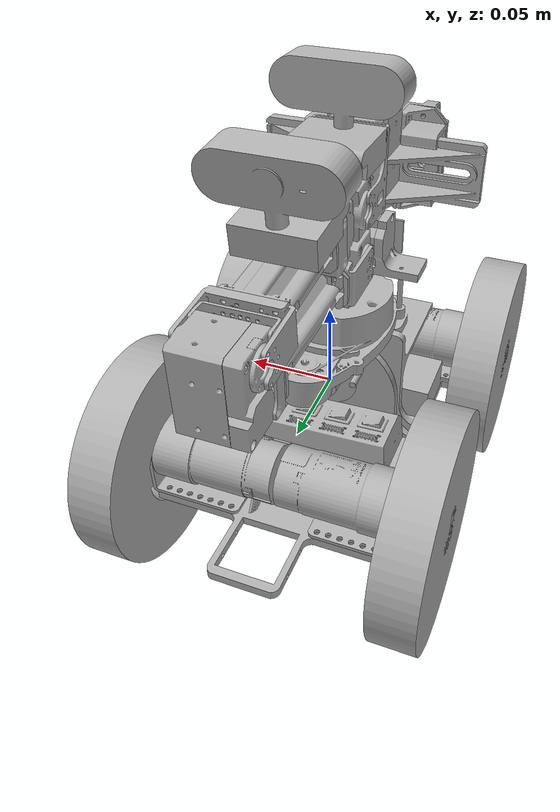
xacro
<?xml version="1.0" ?>
<robot name="k1d" xmlns:xacro="http://www.ros.org/wiki/xacro">

<xacro:include filename="$(find k1d_description)/urdf/materials.xacro" />
<xacro:include filename="$(find k1d_description)/urdf/k1d.trans" />
<xacro:include filename="$(find k1d_description)/urdf/k1d.gazebo" />
<link name="base_link">
  <inertial>
    <origin xyz="-0.000633320061717951 -0.041414084124841974 -0.011332276162165584" rpy="0 0 0"/>
    <mass value="0.8679378922144382"/>
    <inertia ixx="0.00128" iyy="0.001289" izz="0.001492" ixy="-0.0" iyz="-0.000284" ixz="-0.0"/>
  </inertial>
  <visual>
    <origin xyz="0 0 0" rpy="0 0 0"/>
    <geometry>
      <mesh filename="package://k1d_description/meshes/base_link.stl" scale="0.001 0.001 0.001"/>
    </geometry>
    <material name="silver"/>
  </visual>
  <collision>
    <origin xyz="0 0 0" rpy="0 0 0"/>
    <geometry>
      <mesh filename="package://k1d_description/meshes/base_link.stl" scale="0.001 0.001 0.001"/>
    </geometry>
  </collision>
</link>

<link name="base_scan_1">
  <inertial>
    <origin xyz="-0.031013242986738847 0.03010215849057539 0.006905221273833313" rpy="0 0 0"/>
    <mass value="0.05487799022217015"/>
    <inertia ixx="3.6e-05" iyy="1.8e-05" izz="4.5e-05" ixy="-0.0" iyz="5e-06" ixz="0.0"/>
  </inertial>
  <visual>
    <origin xyz="-0.030184 0.029366 -0.034911" rpy="0 0 0"/>
    <geometry>
      <mesh filename="package://k1d_description/meshes/base_scan_1.stl" scale="0.001 0.001 0.001"/>
    </geometry>
    <material name="silver"/>
  </visual>
  <collision>
    <origin xyz="-0.030184 0.029366 -0.034911" rpy="0 0 0"/>
    <geometry>
      <mesh filename="package://k1d_description/meshes/base_scan_1.stl" scale="0.001 0.001 0.001"/>
    </geometry>
  </collision>
</link>

<link name="bearing_1">
  <inertial>
    <origin xyz="-4.700706713833781e-07 0.005000307196905395 -4.6923354529115034e-07" rpy="0 0 0"/>
    <mass value="0.05425530512749553"/>
    <inertia ixx="4e-06" iyy="8e-06" izz="4e-06" ixy="-0.0" iyz="0.0" ixz="0.0"/>
  </inertial>
  <visual>
    <origin xyz="0.000625 0.009697 8.9e-05" rpy="0 0 0"/>
    <geometry>
      <mesh filename="package://k1d_description/meshes/bearing_1.stl" scale="0.001 0.001 0.001"/>
    </geometry>
    <material name="silver"/>
  </visual>
  <collision>
    <origin xyz="0.000625 0.009697 8.9e-05" rpy="0 0 0"/>
    <geometry>
      <mesh filename="package://k1d_description/meshes/bearing_1.stl" scale="0.001 0.001 0.001"/>
    </geometry>
  </collision>
</link>

<link name="limiter_1">
  <inertial>
    <origin xyz="0.00021788879744154987 0.0009369691662430065 0.008633565621573192" rpy="0 0 0"/>
    <mass value="0.006375075725917784"/>
    <inertia ixx="1e-06" iyy="1e-06" izz="0.0" ixy="-0.0" iyz="-0.0" ixz="-0.0"/>
  </inertial>
  <visual>
    <origin xyz="0.000625 -0.004303 8.9e-05" rpy="0 0 0"/>
    <geometry>
      <mesh filename="package://k1d_description/meshes/limiter_1.stl" scale="0.001 0.001 0.001"/>
    </geometry>
    <material name="silver"/>
  </visual>
  <collision>
    <origin xyz="0.000625 -0.004303 8.9e-05" rpy="0 0 0"/>
    <geometry>
      <mesh filename="package://k1d_description/meshes/limiter_1.stl" scale="0.001 0.001 0.001"/>
    </geometry>
  </collision>
</link>

<link name="chassisback_1">
  <inertial>
    <origin xyz="-1.2436701145940895e-05 0.03463766858738379 -0.0253679156939081" rpy="0 0 0"/>
    <mass value="0.6099593335094626"/>
    <inertia ixx="0.000856" iyy="0.000808" izz="0.001331" ixy="0.0" iyz="0.000176" ixz="-0.0"/>
  </inertial>
  <visual>
    <origin xyz="0.000625 -0.000303 8.9e-05" rpy="0 0 0"/>
    <geometry>
      <mesh filename="package://k1d_description/meshes/chassisback_1.stl" scale="0.001 0.001 0.001"/>
    </geometry>
    <material name="silver"/>
  </visual>
  <collision>
    <origin xyz="0.000625 -0.000303 8.9e-05" rpy="0 0 0"/>
    <geometry>
      <mesh filename="package://k1d_description/meshes/chassisback_1.stl" scale="0.001 0.001 0.001"/>
    </geometry>
  </collision>
</link>

<link name="bracket_1">
  <inertial>
    <origin xyz="-0.02889063899231881 -0.01561538393544995 0.006770707043989903" rpy="0 0 0"/>
    <mass value="0.04195982764049016"/>
    <inertia ixx="9e-06" iyy="1.6e-05" izz="1.7e-05" ixy="0.0" iyz="-0.0" ixz="4e-06"/>
  </inertial>
  <visual>
    <origin xyz="0.025571 -0.086772 0.030758" rpy="0 0 0"/>
    <geometry>
      <mesh filename="package://k1d_description/meshes/bracket_1.stl" scale="0.001 0.001 0.001"/>
    </geometry>
    <material name="silver"/>
  </visual>
  <collision>
    <origin xyz="0.025571 -0.086772 0.030758" rpy="0 0 0"/>
    <geometry>
      <mesh filename="package://k1d_description/meshes/bracket_1.stl" scale="0.001 0.001 0.001"/>
    </geometry>
  </collision>
</link>

<link name="bracket_4">
  <inertial>
    <origin xyz="0.028890977169466116 0.015615750207864133 0.006770707043183961" rpy="0 0 0"/>
    <mass value="0.04195982764049016"/>
    <inertia ixx="9e-06" iyy="1.6e-05" izz="1.7e-05" ixy="0.0" iyz="0.0" ixz="-4e-06"/>
  </inertial>
  <visual>
    <origin xyz="-0.024254 -0.05553 0.030758" rpy="0 0 0"/>
    <geometry>
      <mesh filename="package://k1d_description/meshes/bracket_4.stl" scale="0.001 0.001 0.001"/>
    </geometry>
    <material name="silver"/>
  </visual>
  <collision>
    <origin xyz="-0.024254 -0.05553 0.030758" rpy="0 0 0"/>
    <geometry>
      <mesh filename="package://k1d_description/meshes/bracket_4.stl" scale="0.001 0.001 0.001"/>
    </geometry>
  </collision>
</link>

<link name="bracket_3">
  <inertial>
    <origin xyz="-0.02889063896005917 0.015626470195984704 0.006770707043985354" rpy="0 0 0"/>
    <mass value="0.04195982764049016"/>
    <inertia ixx="9e-06" iyy="1.6e-05" izz="1.7e-05" ixy="0.0" iyz="-0.0" ixz="4e-06"/>
  </inertial>
  <visual>
    <origin xyz="0.025571 0.094869 0.030758" rpy="0 0 0"/>
    <geometry>
      <mesh filename="package://k1d_description/meshes/bracket_3.stl" scale="0.001 0.001 0.001"/>
    </geometry>
    <material name="silver"/>
  </visual>
  <collision>
    <origin xyz="0.025571 0.094869 0.030758" rpy="0 0 0"/>
    <geometry>
      <mesh filename="package://k1d_description/meshes/bracket_3.stl" scale="0.001 0.001 0.001"/>
    </geometry>
  </collision>
</link>

<link name="bracket_2">
  <inertial>
    <origin xyz="0.02889097720172588 0.015615604339298622 0.006770707043178906" rpy="0 0 0"/>
    <mass value="0.04195982764049016"/>
    <inertia ixx="9e-06" iyy="1.6e-05" izz="1.7e-05" ixy="0.0" iyz="0.0" ixz="-4e-06"/>
  </inertial>
  <visual>
    <origin xyz="-0.024254 0.094869 0.030758" rpy="0 0 0"/>
    <geometry>
      <mesh filename="package://k1d_description/meshes/bracket_2.stl" scale="0.001 0.001 0.001"/>
    </geometry>
    <material name="silver"/>
  </visual>
  <collision>
    <origin xyz="-0.024254 0.094869 0.030758" rpy="0 0 0"/>
    <geometry>
      <mesh filename="package://k1d_description/meshes/bracket_2.stl" scale="0.001 0.001 0.001"/>
    </geometry>
  </collision>
</link>

<link name="dcmotor_1">
  <inertial>
    <origin xyz="0.028507599418057812 -2.7385761959139443e-05 0.0068004551265215905" rpy="0 0 0"/>
    <mass value="0.45909174206904396"/>
    <inertia ixx="7.2e-05" iyy="0.00019" izz="0.00019" ixy="0.0" iyz="-0.0" ixz="-2e-06"/>
  </inertial>
  <visual>
    <origin xyz="0.070009 -0.071151 0.016958" rpy="0 0 0"/>
    <geometry>
      <mesh filename="package://k1d_description/meshes/dcmotor_1.stl" scale="0.001 0.001 0.001"/>
    </geometry>
    <material name="silver"/>
  </visual>
  <collision>
    <origin xyz="0.070009 -0.071151 0.016958" rpy="0 0 0"/>
    <geometry>
      <mesh filename="package://k1d_description/meshes/dcmotor_1.stl" scale="0.001 0.001 0.001"/>
    </geometry>
  </collision>
</link>

<link name="dcmotor_2">
  <inertial>
    <origin xyz="-0.02850726120844349 2.7606165807755878e-05 0.006800455125904808" rpy="0 0 0"/>
    <mass value="0.45909174206904396"/>
    <inertia ixx="7.2e-05" iyy="0.00019" izz="0.00019" ixy="0.0" iyz="0.0" ixz="2e-06"/>
  </inertial>
  <visual>
    <origin xyz="-0.068692 0.079248 0.016958" rpy="0 0 0"/>
    <geometry>
      <mesh filename="package://k1d_description/meshes/dcmotor_2.stl" scale="0.001 0.001 0.001"/>
    </geometry>
    <material name="silver"/>
  </visual>
  <collision>
    <origin xyz="-0.068692 0.079248 0.016958" rpy="0 0 0"/>
    <geometry>
      <mesh filename="package://k1d_description/meshes/dcmotor_2.stl" scale="0.001 0.001 0.001"/>
    </geometry>
  </collision>
</link>

<link name="dcmotor_3">
  <inertial>
    <origin xyz="0.028507599450317465 -2.753163052453267e-05 0.006800455126517084" rpy="0 0 0"/>
    <mass value="0.45909174206904396"/>
    <inertia ixx="7.2e-05" iyy="0.00019" izz="0.00019" ixy="0.0" iyz="-0.0" ixz="-2e-06"/>
  </inertial>
  <visual>
    <origin xyz="0.070009 0.079248 0.016958" rpy="0 0 0"/>
    <geometry>
      <mesh filename="package://k1d_description/meshes/dcmotor_3.stl" scale="0.001 0.001 0.001"/>
    </geometry>
    <material name="silver"/>
  </visual>
  <collision>
    <origin xyz="0.070009 0.079248 0.016958" rpy="0 0 0"/>
    <geometry>
      <mesh filename="package://k1d_description/meshes/dcmotor_3.stl" scale="0.001 0.001 0.001"/>
    </geometry>
  </collision>
</link>

<link name="dcmotor_4">
  <inertial>
    <origin xyz="-0.028507261240703193 2.7752034373065837e-05 0.006800455125909762" rpy="0 0 0"/>
    <mass value="0.45909174206904396"/>
    <inertia ixx="7.2e-05" iyy="0.00019" izz="0.00019" ixy="0.0" iyz="0.0" ixz="2e-06"/>
  </inertial>
  <visual>
    <origin xyz="-0.068692 -0.071151 0.016958" rpy="0 0 0"/>
    <geometry>
      <mesh filename="package://k1d_description/meshes/dcmotor_4.stl" scale="0.001 0.001 0.001"/>
    </geometry>
    <material name="silver"/>
  </visual>
  <collision>
    <origin xyz="-0.068692 -0.071151 0.016958" rpy="0 0 0"/>
    <geometry>
      <mesh filename="package://k1d_description/meshes/dcmotor_4.stl" scale="0.001 0.001 0.001"/>
    </geometry>
  </collision>
</link>

<link name="hub_1">
  <inertial>
    <origin xyz="0.0031138310480299386 -0.0001543860489675447 9.100569364329028e-05" rpy="0 0 0"/>
    <mass value="0.02001967132782171"/>
    <inertia ixx="2e-06" iyy="1e-06" izz="1e-06" ixy="0.0" iyz="-0.0" ixz="-0.0"/>
  </inertial>
  <visual>
    <origin xyz="0.092009 -0.071151 0.016958" rpy="0 0 0"/>
    <geometry>
      <mesh filename="package://k1d_description/meshes/hub_1.stl" scale="0.001 0.001 0.001"/>
    </geometry>
    <material name="silver"/>
  </visual>
  <collision>
    <origin xyz="0.092009 -0.071151 0.016958" rpy="0 0 0"/>
    <geometry>
      <mesh filename="package://k1d_description/meshes/hub_1.stl" scale="0.001 0.001 0.001"/>
    </geometry>
  </collision>
</link>

<link name="hub_2">
  <inertial>
    <origin xyz="-0.003113492838516446 0.00015460645281629992 9.100569231643499e-05" rpy="0 0 0"/>
    <mass value="0.02001967132782171"/>
    <inertia ixx="2e-06" iyy="1e-06" izz="1e-06" ixy="0.0" iyz="0.0" ixz="0.0"/>
  </inertial>
  <visual>
    <origin xyz="-0.090692 0.079248 0.016958" rpy="0 0 0"/>
    <geometry>
      <mesh filename="package://k1d_description/meshes/hub_2.stl" scale="0.001 0.001 0.001"/>
    </geometry>
    <material name="silver"/>
  </visual>
  <collision>
    <origin xyz="-0.090692 0.079248 0.016958" rpy="0 0 0"/>
    <geometry>
      <mesh filename="package://k1d_description/meshes/hub_2.stl" scale="0.001 0.001 0.001"/>
    </geometry>
  </collision>
</link>

<link name="hub_3">
  <inertial>
    <origin xyz="0.0031138310802898694 -0.0001545319175329657 9.100569363862387e-05" rpy="0 0 0"/>
    <mass value="0.02001967132782171"/>
    <inertia ixx="2e-06" iyy="1e-06" izz="1e-06" ixy="0.0" iyz="-0.0" ixz="-0.0"/>
  </inertial>
  <visual>
    <origin xyz="0.092009 0.079248 0.016958" rpy="0 0 0"/>
    <geometry>
      <mesh filename="package://k1d_description/meshes/hub_3.stl" scale="0.001 0.001 0.001"/>
    </geometry>
    <material name="silver"/>
  </visual>
  <collision>
    <origin xyz="0.092009 0.079248 0.016958" rpy="0 0 0"/>
    <geometry>
      <mesh filename="package://k1d_description/meshes/hub_3.stl" scale="0.001 0.001 0.001"/>
    </geometry>
  </collision>
</link>

<link name="hub_4">
  <inertial>
    <origin xyz="-0.0031134928707760023 0.00015475232138174866 9.100569232154895e-05" rpy="0 0 0"/>
    <mass value="0.02001967132782171"/>
    <inertia ixx="2e-06" iyy="1e-06" izz="1e-06" ixy="0.0" iyz="0.0" ixz="0.0"/>
  </inertial>
  <visual>
    <origin xyz="-0.090692 -0.071151 0.016958" rpy="0 0 0"/>
    <geometry>
      <mesh filename="package://k1d_description/meshes/hub_4.stl" scale="0.001 0.001 0.001"/>
    </geometry>
    <material name="silver"/>
  </visual>
  <collision>
    <origin xyz="-0.090692 -0.071151 0.016958" rpy="0 0 0"/>
    <geometry>
      <mesh filename="package://k1d_description/meshes/hub_4.stl" scale="0.001 0.001 0.001"/>
    </geometry>
  </collision>
</link>

<link name="wheel_1">
  <inertial>
    <origin xyz="-0.011849757228356753 1.8315325828188733e-07 2.629076953537812e-07" rpy="0 0 0"/>
    <mass value="2.126491898240408"/>
    <inertia ixx="0.004598" iyy="0.002411" izz="0.002411" ixy="0.0" iyz="-0.0" ixz="-0.0"/>
  </inertial>
  <visual>
    <origin xyz="-0.090692 -0.071151 0.016958" rpy="0 0 0"/>
    <geometry>
      <mesh filename="package://k1d_description/meshes/wheel_1.stl" scale="0.001 0.001 0.001"/>
    </geometry>
    <material name="silver"/>
  </visual>
  <collision>
    <origin xyz="-0.090692 -0.071151 0.016958" rpy="0 0 0"/>
    <geometry>
      <mesh filename="package://k1d_description/meshes/wheel_1.stl" scale="0.001 0.001 0.001"/>
    </geometry>
  </collision>
</link>

<link name="wheel_2">
  <inertial>
    <origin xyz="-0.011849757196097072 3.728469279151714e-08 2.629076902745109e-07" rpy="0 0 0"/>
    <mass value="2.126491898240408"/>
    <inertia ixx="0.004598" iyy="0.002411" izz="0.002411" ixy="0.0" iyz="-0.0" ixz="-0.0"/>
  </inertial>
  <visual>
    <origin xyz="-0.090692 0.079248 0.016958" rpy="0 0 0"/>
    <geometry>
      <mesh filename="package://k1d_description/meshes/wheel_2.stl" scale="0.001 0.001 0.001"/>
    </geometry>
    <material name="silver"/>
  </visual>
  <collision>
    <origin xyz="-0.090692 0.079248 0.016958" rpy="0 0 0"/>
    <geometry>
      <mesh filename="package://k1d_description/meshes/wheel_2.stl" scale="0.001 0.001 0.001"/>
    </geometry>
  </collision>
</link>

<link name="wheel_3">
  <inertial>
    <origin xyz="0.011850095437869135 3.725059061210345e-08 2.629088816027969e-07" rpy="0 0 0"/>
    <mass value="2.126491898240408"/>
    <inertia ixx="0.004598" iyy="0.002411" izz="0.002411" ixy="0.0" iyz="0.0" ixz="0.0"/>
  </inertial>
  <visual>
    <origin xyz="0.092009 0.079248 0.016958" rpy="0 0 0"/>
    <geometry>
      <mesh filename="package://k1d_description/meshes/wheel_3.stl" scale="0.001 0.001 0.001"/>
    </geometry>
    <material name="silver"/>
  </visual>
  <collision>
    <origin xyz="0.092009 0.079248 0.016958" rpy="0 0 0"/>
    <geometry>
      <mesh filename="package://k1d_description/meshes/wheel_3.stl" scale="0.001 0.001 0.001"/>
    </geometry>
  </collision>
</link>

<link name="wheel_4">
  <inertial>
    <origin xyz="0.011850095405609426 1.8311915624125152e-07 2.6290888621716135e-07" rpy="0 0 0"/>
    <mass value="2.126491898240408"/>
    <inertia ixx="0.004598" iyy="0.002411" izz="0.002411" ixy="0.0" iyz="0.0" ixz="0.0"/>
  </inertial>
  <visual>
    <origin xyz="0.092009 -0.071151 0.016958" rpy="0 0 0"/>
    <geometry>
      <mesh filename="package://k1d_description/meshes/wheel_4.stl" scale="0.001 0.001 0.001"/>
    </geometry>
    <material name="silver"/>
  </visual>
  <collision>
    <origin xyz="0.092009 -0.071151 0.016958" rpy="0 0 0"/>
    <geometry>
      <mesh filename="package://k1d_description/meshes/wheel_4.stl" scale="0.001 0.001 0.001"/>
    </geometry>
  </collision>
</link>

<link name="spacer_1">
  <inertial>
    <origin xyz="0.03099956508952051 -3.111700395755368e-07 0.01073353076646108" rpy="0 0 0"/>
    <mass value="0.002382449094157573"/>
    <inertia ixx="0.0" iyy="2e-06" izz="2e-06" ixy="-0.0" iyz="-0.0" ixz="0.0"/>
  </inertial>
  <visual>
    <origin xyz="0.031816 0.029366 -0.041211" rpy="0 0 0"/>
    <geometry>
      <mesh filename="package://k1d_description/meshes/spacer_1.stl" scale="0.001 0.001 0.001"/>
    </geometry>
    <material name="silver"/>
  </visual>
  <collision>
    <origin xyz="0.031816 0.029366 -0.041211" rpy="0 0 0"/>
    <geometry>
      <mesh filename="package://k1d_description/meshes/spacer_1.stl" scale="0.001 0.001 0.001"/>
    </geometry>
  </collision>
</link>

<link name="clawholder_1">
  <inertial>
    <origin xyz="0.031997119905123016 -0.006143865086212039 0.010024736780897991" rpy="0 0 0"/>
    <mass value="0.11911655346514588"/>
    <inertia ixx="1.5e-05" iyy="6.9e-05" izz="6.2e-05" ixy="0.0" iyz="1e-06" ixz="1e-06"/>
  </inertial>
  <visual>
    <origin xyz="0.031816 0.029366 -0.062679" rpy="0 0 0"/>
    <geometry>
      <mesh filename="package://k1d_description/meshes/clawholder_1.stl" scale="0.001 0.001 0.001"/>
    </geometry>
    <material name="silver"/>
  </visual>
  <collision>
    <origin xyz="0.031816 0.029366 -0.062679" rpy="0 0 0"/>
    <geometry>
      <mesh filename="package://k1d_description/meshes/clawholder_1.stl" scale="0.001 0.001 0.001"/>
    </geometry>
  </collision>
</link>

<link name="gassensor_1">
  <inertial>
    <origin xyz="-0.004746631959460942 -0.0008000280042196398 -0.007877393733740051" rpy="0 0 0"/>
    <mass value="0.0034603887447628642"/>
    <inertia ixx="0.0" iyy="0.0" izz="0.0" ixy="0.0" iyz="0.0" ixz="-0.0"/>
  </inertial>
  <visual>
    <origin xyz="0.015808 0.044105 -0.086221" rpy="0 0 0"/>
    <geometry>
      <mesh filename="package://k1d_description/meshes/gassensor_1.stl" scale="0.001 0.001 0.001"/>
    </geometry>
    <material name="silver"/>
  </visual>
  <collision>
    <origin xyz="0.015808 0.044105 -0.086221" rpy="0 0 0"/>
    <geometry>
      <mesh filename="package://k1d_description/meshes/gassensor_1.stl" scale="0.001 0.001 0.001"/>
    </geometry>
  </collision>
</link>

<link name="thermalsensor_1">
  <inertial>
    <origin xyz="0.009947674706848693 -0.0011020386741580346 -0.009714002418419354" rpy="0 0 0"/>
    <mass value="0.004996183093515437"/>
    <inertia ixx="0.0" iyy="0.0" izz="0.0" ixy="-0.0" iyz="0.0" ixz="-0.0"/>
  </inertial>
  <visual>
    <origin xyz="-0.011291 0.044105 -0.089763" rpy="0 0 0"/>
    <geometry>
      <mesh filename="package://k1d_description/meshes/thermalsensor_1.stl" scale="0.001 0.001 0.001"/>
    </geometry>
    <material name="silver"/>
  </visual>
  <collision>
    <origin xyz="-0.011291 0.044105 -0.089763" rpy="0 0 0"/>
    <geometry>
      <mesh filename="package://k1d_description/meshes/thermalsensor_1.stl" scale="0.001 0.001 0.001"/>
    </geometry>
  </collision>
</link>

<link name="battery_1">
  <inertial>
    <origin xyz="-0.05500011915754396 -0.017595185994781874 0.010103203711203074" rpy="0 0 0"/>
    <mass value="0.6140038483319866"/>
    <inertia ixx="8.4e-05" iyy="0.00064" izz="0.000682" ixy="-0.0" iyz="-0.0" ixz="0.0"/>
  </inertial>
  <visual>
    <origin xyz="-0.054375 0.019697 0.030758" rpy="0 0 0"/>
    <geometry>
      <mesh filename="package://k1d_description/meshes/battery_1.stl" scale="0.001 0.001 0.001"/>
    </geometry>
    <material name="silver"/>
  </visual>
  <collision>
    <origin xyz="-0.054375 0.019697 0.030758" rpy="0 0 0"/>
    <geometry>
      <mesh filename="package://k1d_description/meshes/battery_1.stl" scale="0.001 0.001 0.001"/>
    </geometry>
  </collision>
</link>

<link name="usbhub_1">
  <inertial>
    <origin xyz="-0.050083838124938704 0.016946085208227595 0.013118894325403644" rpy="0 0 0"/>
    <mass value="0.555204593683218"/>
    <inertia ixx="8.3e-05" iyy="0.000508" izz="0.000541" ixy="-3e-06" iyz="-1e-06" ixz="1.5e-05"/>
  </inertial>
  <visual>
    <origin xyz="-0.054375 -0.005303 0.030758" rpy="0 0 0"/>
    <geometry>
      <mesh filename="package://k1d_description/meshes/usbhub_1.stl" scale="0.001 0.001 0.001"/>
    </geometry>
    <material name="silver"/>
  </visual>
  <collision>
    <origin xyz="-0.054375 -0.005303 0.030758" rpy="0 0 0"/>
    <geometry>
      <mesh filename="package://k1d_description/meshes/usbhub_1.stl" scale="0.001 0.001 0.001"/>
    </geometry>
  </collision>
</link>

<link name="DC12_W-IDLE_ALT1_1">
  <inertial>
    <origin xyz="-0.016299122954718883 0.020480802014490297 -0.011000469233539034" rpy="0 0 0"/>
    <mass value="0.33646225639068494"/>
    <inertia ixx="8.2e-05" iyy="5.4e-05" izz="9.4e-05" ixy="-0.0" iyz="-0.0" ixz="0.0"/>
  </inertial>
  <visual>
    <origin xyz="-0.016392 0.038255 -0.092529" rpy="0 0 0"/>
    <geometry>
      <mesh filename="package://k1d_description/meshes/DC12_W-IDLE_ALT1_1.stl" scale="0.001 0.001 0.001"/>
    </geometry>
    <material name="silver"/>
  </visual>
  <collision>
    <origin xyz="-0.016392 0.038255 -0.092529" rpy="0 0 0"/>
    <geometry>
      <mesh filename="package://k1d_description/meshes/DC12_W-IDLE_ALT1_1.stl" scale="0.001 0.001 0.001"/>
    </geometry>
  </collision>
</link>

<link name="FR12_H101_1">
  <inertial>
    <origin xyz="-0.021000110478255726 0.020374146907254635 -4.6923355151440305e-07" rpy="0 0 0"/>
    <mass value="0.03437095087164525"/>
    <inertia ixx="4e-06" iyy="1.1e-05" izz="1.2e-05" ixy="0.0" iyz="0.0" ixz="0.0"/>
  </inertial>
  <visual>
    <origin xyz="-0.020292 0.006255 -0.081529" rpy="0 0 0"/>
    <geometry>
      <mesh filename="package://k1d_description/meshes/FR12_H101_1.stl" scale="0.001 0.001 0.001"/>
    </geometry>
    <material name="silver"/>
  </visual>
  <collision>
    <origin xyz="-0.020292 0.006255 -0.081529" rpy="0 0 0"/>
    <geometry>
      <mesh filename="package://k1d_description/meshes/FR12_H101_1.stl" scale="0.001 0.001 0.001"/>
    </geometry>
  </collision>
</link>

<link name="ILA-A01_OPEN_1">
  <inertial>
    <origin xyz="-0.012000110474712982 0.039399195230753525 -0.006003908265283173" rpy="0 0 0"/>
    <mass value="0.13410736520700092"/>
    <inertia ixx="8.6e-05" iyy="1.5e-05" izz="9.2e-05" ixy="-0.0" iyz="0.0" ixz="0.0"/>
  </inertial>
  <visual>
    <origin xyz="-0.011292 -0.022245 -0.087529" rpy="0 0 0"/>
    <geometry>
      <mesh filename="package://k1d_description/meshes/ILA-A01_OPEN_1.stl" scale="0.001 0.001 0.001"/>
    </geometry>
    <material name="silver"/>
  </visual>
  <collision>
    <origin xyz="-0.011292 -0.022245 -0.087529" rpy="0 0 0"/>
    <geometry>
      <mesh filename="package://k1d_description/meshes/ILA-A01_OPEN_1.stl" scale="0.001 0.001 0.001"/>
    </geometry>
  </collision>
</link>

<link name="FR12_S101_1">
  <inertial>
    <origin xyz="-0.012000110478030184 0.002327711166216606 0.005999530766310754" rpy="0 0 0"/>
    <mass value="0.024686418261500025"/>
    <inertia ixx="5e-06" iyy="9e-06" izz="5e-06" ixy="-0.0" iyz="0.0" ixz="-0.0"/>
  </inertial>
  <visual>
    <origin xyz="-0.011292 -0.102245 -0.087529" rpy="0 0 0"/>
    <geometry>
      <mesh filename="package://k1d_description/meshes/FR12_S101_1.stl" scale="0.001 0.001 0.001"/>
    </geometry>
    <material name="silver"/>
  </visual>
  <collision>
    <origin xyz="-0.011292 -0.102245 -0.087529" rpy="0 0 0"/>
    <geometry>
      <mesh filename="package://k1d_description/meshes/FR12_S101_1.stl" scale="0.001 0.001 0.001"/>
    </geometry>
  </collision>
</link>

<link name="FR12_H101_2">
  <inertial>
    <origin xyz="-0.021000110482432277 -0.0203238284716646 0.0014207353834639752" rpy="0 0 0"/>
    <mass value="0.03437095087164525"/>
    <inertia ixx="4e-06" iyy="1.1e-05" izz="1.2e-05" ixy="0.0" iyz="0.0" ixz="0.0"/>
  </inertial>
  <visual>
    <origin xyz="-0.020192 -0.121745 -0.105529" rpy="0 0 0"/>
    <geometry>
      <mesh filename="package://k1d_description/meshes/FR12_H101_2.stl" scale="0.001 0.001 0.001"/>
    </geometry>
    <material name="silver"/>
  </visual>
  <collision>
    <origin xyz="-0.020192 -0.121745 -0.105529" rpy="0 0 0"/>
    <geometry>
      <mesh filename="package://k1d_description/meshes/FR12_H101_2.stl" scale="0.001 0.001 0.001"/>
    </geometry>
  </collision>
</link>

<link name="ILA-A02_OPEN_1">
  <inertial>
    <origin xyz="-0.012000110478114587 -0.027307262569741378 -0.004101798037027038" rpy="0 0 0"/>
    <mass value="0.09495273808046654"/>
    <inertia ixx="3.2e-05" iyy="1.1e-05" izz="3.6e-05" ixy="0.0" iyz="2e-06" ixz="-0.0"/>
  </inertial>
  <visual>
    <origin xyz="-0.011192 -0.093733 -0.113502" rpy="0 0 0"/>
    <geometry>
      <mesh filename="package://k1d_description/meshes/ILA-A02_OPEN_1.stl" scale="0.001 0.001 0.001"/>
    </geometry>
    <material name="silver"/>
  </visual>
  <collision>
    <origin xyz="-0.011192 -0.093733 -0.113502" rpy="0 0 0"/>
    <geometry>
      <mesh filename="package://k1d_description/meshes/ILA-A02_OPEN_1.stl" scale="0.001 0.001 0.001"/>
    </geometry>
  </collision>
</link>

<link name="FR12_S102_2">
  <inertial>
    <origin xyz="-0.012000110496538735 -0.0031995611667791288 -0.005791315715793652" rpy="0 0 0"/>
    <mass value="0.01630992935911327"/>
    <inertia ixx="1e-06" iyy="4e-06" izz="3e-06" ixy="0.0" iyz="-0.0" ixz="-0.0"/>
  </inertial>
  <visual>
    <origin xyz="-0.011192 -0.038867 -0.117339" rpy="0 0 0"/>
    <geometry>
      <mesh filename="package://k1d_description/meshes/FR12_S102_2.stl" scale="0.001 0.001 0.001"/>
    </geometry>
    <material name="silver"/>
  </visual>
  <collision>
    <origin xyz="-0.011192 -0.038867 -0.117339" rpy="0 0 0"/>
    <geometry>
      <mesh filename="package://k1d_description/meshes/FR12_S102_2.stl" scale="0.001 0.001 0.001"/>
    </geometry>
  </collision>
</link>

<link name="DC12_W-IDLE_ALT1_3">
  <inertial>
    <origin xyz="-0.0162991229786601 -0.019663116396526195 0.012401770852094388" rpy="0 0 0"/>
    <mass value="0.33646225639068494"/>
    <inertia ixx="8.2e-05" iyy="5.4e-05" izz="9.4e-05" ixy="0.0" iyz="3e-06" ixz="-0.0"/>
  </inertial>
  <visual>
    <origin xyz="-0.016192 -0.029202 -0.100973" rpy="0 0 0"/>
    <geometry>
      <mesh filename="package://k1d_description/meshes/DC12_W-IDLE_ALT1_3.stl" scale="0.001 0.001 0.001"/>
    </geometry>
    <material name="silver"/>
  </visual>
  <collision>
    <origin xyz="-0.016192 -0.029202 -0.100973" rpy="0 0 0"/>
    <geometry>
      <mesh filename="package://k1d_description/meshes/DC12_W-IDLE_ALT1_3.stl" scale="0.001 0.001 0.001"/>
    </geometry>
  </collision>
</link>

<link name="FR12_H104_1">
  <inertial>
    <origin xyz="-0.02050011059852679 -0.022576590762154753 0.00821656608975628" rpy="0 0 0"/>
    <mass value="0.033869717896312025"/>
    <inertia ixx="8e-06" iyy="1.4e-05" izz="1.1e-05" ixy="-0.0" iyz="1e-06" ixz="0.0"/>
  </inertial>
  <visual>
    <origin xyz="-0.019892 0.001953 -0.114178" rpy="0 0 0"/>
    <geometry>
      <mesh filename="package://k1d_description/meshes/FR12_H104_1.stl" scale="0.001 0.001 0.001"/>
    </geometry>
    <material name="silver"/>
  </visual>
  <collision>
    <origin xyz="-0.019892 0.001953 -0.114178" rpy="0 0 0"/>
    <geometry>
      <mesh filename="package://k1d_description/meshes/FR12_H104_1.stl" scale="0.001 0.001 0.001"/>
    </geometry>
  </collision>
</link>

<link name="camera__1__1">
  <inertial>
    <origin xyz="8.864610952068479e-06 0.019607953749089864 0.024310133593720626" rpy="0 0 0"/>
    <mass value="0.4370558986671765"/>
    <inertia ixx="0.000146" iyy="0.000217" izz="0.000148" ixy="-0.0" iyz="-2.8e-05" ixz="-0.0"/>
  </inertial>
  <visual>
    <origin xyz="0.000808 -0.039181 -0.121828" rpy="0 0 0"/>
    <geometry>
      <mesh filename="package://k1d_description/meshes/camera__1__1.stl" scale="0.001 0.001 0.001"/>
    </geometry>
    <material name="silver"/>
  </visual>
  <collision>
    <origin xyz="0.000808 -0.039181 -0.121828" rpy="0 0 0"/>
    <geometry>
      <mesh filename="package://k1d_description/meshes/camera__1__1.stl" scale="0.001 0.001 0.001"/>
    </geometry>
  </collision>
</link>

<link name="DC12_STD_2">
  <inertial>
    <origin xyz="-0.011000110514608745 -0.017207209159882827 -0.020921334605471617" rpy="0 0 0"/>
    <mass value="0.33324515761008355"/>
    <inertia ixx="9.3e-05" iyy="8.1e-05" izz="5.3e-05" ixy="-0.0" iyz="0.0" ixz="0.0"/>
  </inertial>
  <visual>
    <origin xyz="-0.010392 0.031052 -0.145182" rpy="0 0 0"/>
    <geometry>
      <mesh filename="package://k1d_description/meshes/DC12_STD_2.stl" scale="0.001 0.001 0.001"/>
    </geometry>
    <material name="silver"/>
  </visual>
  <collision>
    <origin xyz="-0.010392 0.031052 -0.145182" rpy="0 0 0"/>
    <geometry>
      <mesh filename="package://k1d_description/meshes/DC12_STD_2.stl" scale="0.001 0.001 0.001"/>
    </geometry>
  </collision>
</link>

<link name="IRB-A01_OPEN_1">
  <inertial>
    <origin xyz="0.014570487048808227 0.005103189606448406 -0.027737819550585255" rpy="0 0 0"/>
    <mass value="0.13126007140606222"/>
    <inertia ixx="4.5e-05" iyy="7.3e-05" izz="4.7e-05" ixy="9e-06" iyz="-2e-06" ixz="8e-06"/>
  </inertial>
  <visual>
    <origin xyz="-0.010392 0.065032 -0.143995" rpy="0 0 0"/>
    <geometry>
      <mesh filename="package://k1d_description/meshes/IRB-A01_OPEN_1.stl" scale="0.001 0.001 0.001"/>
    </geometry>
    <material name="silver"/>
  </visual>
  <collision>
    <origin xyz="-0.010392 0.065032 -0.143995" rpy="0 0 0"/>
    <geometry>
      <mesh filename="package://k1d_description/meshes/IRB-A01_OPEN_1.stl" scale="0.001 0.001 0.001"/>
    </geometry>
  </collision>
</link>

<link name="IRB-A02_OPEN_1">
  <inertial>
    <origin xyz="-0.014800178908918049 0.005099047672322728 -0.027896796307701782" rpy="0 0 0"/>
    <mass value="0.13009105325420064"/>
    <inertia ixx="4.4e-05" iyy="7.1e-05" izz="4.6e-05" ixy="-9e-06" iyz="-2e-06" ixz="-7e-06"/>
  </inertial>
  <visual>
    <origin xyz="0.011608 0.065032 -0.143995" rpy="0 0 0"/>
    <geometry>
      <mesh filename="package://k1d_description/meshes/IRB-A02_OPEN_1.stl" scale="0.001 0.001 0.001"/>
    </geometry>
    <material name="silver"/>
  </visual>
  <collision>
    <origin xyz="0.011608 0.065032 -0.143995" rpy="0 0 0"/>
    <geometry>
      <mesh filename="package://k1d_description/meshes/IRB-A02_OPEN_1.stl" scale="0.001 0.001 0.001"/>
    </geometry>
  </collision>
</link>

<link name="ICA-A01_OPEN_1">
  <inertial>
    <origin xyz="-1.1051919610234086e-07 -0.004208611058888992 -0.00014721580911623844" rpy="0 0 0"/>
    <mass value="0.019070893365448417"/>
    <inertia ixx="1e-06" iyy="2e-06" izz="1e-06" ixy="-0.0" iyz="0.0" ixz="1e-06"/>
  </inertial>
  <visual>
    <origin xyz="0.000608 0.065914 -0.111945" rpy="0 0 0"/>
    <geometry>
      <mesh filename="package://k1d_description/meshes/ICA-A01_OPEN_1.stl" scale="0.001 0.001 0.001"/>
    </geometry>
    <material name="silver"/>
  </visual>
  <collision>
    <origin xyz="0.000608 0.065914 -0.111945" rpy="0 0 0"/>
    <geometry>
      <mesh filename="package://k1d_description/meshes/ICA-A01_OPEN_1.stl" scale="0.001 0.001 0.001"/>
    </geometry>
  </collision>
</link>

<link name="PR33_SPD-A01_1">
  <inertial>
    <origin xyz="-0.0021497706930674893 -5.782148976285484e-08 2.3123534301228155e-07" rpy="0 0 0"/>
    <mass value="0.017485090000000002"/>
    <inertia ixx="2e-06" iyy="0.0" izz="2e-06" ixy="0.0" iyz="-0.0" ixz="0.0"/>
  </inertial>
  <visual>
    <origin xyz="-0.014131 0.128329 -0.109865" rpy="0 0 0"/>
    <geometry>
      <mesh filename="package://k1d_description/meshes/PR33_SPD-A01_1.stl" scale="0.001 0.001 0.001"/>
    </geometry>
    <material name="silver"/>
  </visual>
  <collision>
    <origin xyz="-0.014131 0.128329 -0.109865" rpy="0 0 0"/>
    <geometry>
      <mesh filename="package://k1d_description/meshes/PR33_SPD-A01_1.stl" scale="0.001 0.001 0.001"/>
    </geometry>
  </collision>
</link>

<link name="PR33_SPD-A01_2">
  <inertial>
    <origin xyz="0.0021495496512901405 -1.7964915863255548e-07 2.111345877991999e-07" rpy="0 0 0"/>
    <mass value="0.017485090000000002"/>
    <inertia ixx="2e-06" iyy="0.0" izz="2e-06" ixy="-0.0" iyz="-0.0" ixz="-0.0"/>
  </inertial>
  <visual>
    <origin xyz="0.014097 0.128129 -0.109872" rpy="0 0 0"/>
    <geometry>
      <mesh filename="package://k1d_description/meshes/PR33_SPD-A01_2.stl" scale="0.001 0.001 0.001"/>
    </geometry>
    <material name="silver"/>
  </visual>
  <collision>
    <origin xyz="0.014097 0.128129 -0.109872" rpy="0 0 0"/>
    <geometry>
      <mesh filename="package://k1d_description/meshes/PR33_SPD-A01_2.stl" scale="0.001 0.001 0.001"/>
    </geometry>
  </collision>
</link>

<link name="IBL-A01_OPEN_2">
  <inertial>
    <origin xyz="0.011084595517718229 -0.008566113175039497 0.017712042914393725" rpy="0 0 0"/>
    <mass value="0.06898740811834467"/>
    <inertia ixx="2.4e-05" iyy="2.3e-05" izz="6e-06" ixy="0.0" iyz="1e-06" ixz="0.0"/>
  </inertial>
  <visual>
    <origin xyz="0.038597 0.065789 -0.094038" rpy="0 0 0"/>
    <geometry>
      <mesh filename="package://k1d_description/meshes/IBL-A01_OPEN_2.stl" scale="0.001 0.001 0.001"/>
    </geometry>
    <material name="silver"/>
  </visual>
  <collision>
    <origin xyz="0.038597 0.065789 -0.094038" rpy="0 0 0"/>
    <geometry>
      <mesh filename="package://k1d_description/meshes/IBL-A01_OPEN_2.stl" scale="0.001 0.001 0.001"/>
    </geometry>
  </collision>
</link>

<link name="IGP-A01_OPEN_1">
  <inertial>
    <origin xyz="0.001166364316056212 -0.024350369942469863 -0.0248504820054104" rpy="0 0 0"/>
    <mass value="0.12878886955273366"/>
    <inertia ixx="7.6e-05" iyy="3.4e-05" izz="5.6e-05" ixy="-1e-06" iyz="-1e-06" ixz="-0.0"/>
  </inertial>
  <visual>
    <origin xyz="-0.016131 0.075649 -0.135719" rpy="0 0 0"/>
    <geometry>
      <mesh filename="package://k1d_description/meshes/IGP-A01_OPEN_1.stl" scale="0.001 0.001 0.001"/>
    </geometry>
    <material name="silver"/>
  </visual>
  <collision>
    <origin xyz="-0.016131 0.075649 -0.135719" rpy="0 0 0"/>
    <geometry>
      <mesh filename="package://k1d_description/meshes/IGP-A01_OPEN_1.stl" scale="0.001 0.001 0.001"/>
    </geometry>
  </collision>
</link>

<link name="IGP-A01_OPEN_2">
  <inertial>
    <origin xyz="-0.0011665853578225922 -0.02434951571948707 -0.024878452539785434" rpy="0 0 0"/>
    <mass value="0.12878886955273366"/>
    <inertia ixx="7.6e-05" iyy="3.4e-05" izz="5.6e-05" ixy="1e-06" iyz="-1e-06" ixz="0.0"/>
  </inertial>
  <visual>
    <origin xyz="0.016097 0.075449 -0.135726" rpy="0 0 0"/>
    <geometry>
      <mesh filename="package://k1d_description/meshes/IGP-A01_OPEN_2.stl" scale="0.001 0.001 0.001"/>
    </geometry>
    <material name="silver"/>
  </visual>
  <collision>
    <origin xyz="0.016097 0.075449 -0.135726" rpy="0 0 0"/>
    <geometry>
      <mesh filename="package://k1d_description/meshes/IGP-A01_OPEN_2.stl" scale="0.001 0.001 0.001"/>
    </geometry>
  </collision>
</link>

<link name="camera_1">
  <inertial>
    <origin xyz="0.020990914390233664 0.012791622826963436 0.010071359720055323" rpy="0 0 0"/>
    <mass value="0.4370558986671765"/>
    <inertia ixx="0.000146" iyy="0.000219" izz="0.000146" ixy="-0.0" iyz="2.5e-05" ixz="0.0"/>
  </inertial>
  <visual>
    <origin xyz="0.021108 0.026668 -0.148587" rpy="0 0 0"/>
    <geometry>
      <mesh filename="package://k1d_description/meshes/camera_1.stl" scale="0.001 0.001 0.001"/>
    </geometry>
    <material name="silver"/>
  </visual>
  <collision>
    <origin xyz="0.021108 0.026668 -0.148587" rpy="0 0 0"/>
    <geometry>
      <mesh filename="package://k1d_description/meshes/camera_1.stl" scale="0.001 0.001 0.001"/>
    </geometry>
  </collision>
</link>

<link name="DC12_W-IDLE_ALT1_2">
  <inertial>
    <origin xyz="-0.016299122954603316 0.011000344436144519 -0.019520011655149716" rpy="0 0 0"/>
    <mass value="0.33646225639068494"/>
    <inertia ixx="8.2e-05" iyy="9.4e-05" izz="5.4e-05" ixy="-0.0" iyz="0.0" ixz="-0.0"/>
  </inertial>
  <visual>
    <origin xyz="-0.016292 -0.110745 -0.113529" rpy="0 0 0"/>
    <geometry>
      <mesh filename="package://k1d_description/meshes/DC12_W-IDLE_ALT1_2.stl" scale="0.001 0.001 0.001"/>
    </geometry>
    <material name="silver"/>
  </visual>
  <collision>
    <origin xyz="-0.016292 -0.110745 -0.113529" rpy="0 0 0"/>
    <geometry>
      <mesh filename="package://k1d_description/meshes/DC12_W-IDLE_ALT1_2.stl" scale="0.001 0.001 0.001"/>
    </geometry>
  </collision>
</link>

<link name="IBL-A01_OPEN_1">
  <inertial>
    <origin xyz="-0.01108481655900485 -0.005767991352286506 0.01780906301543693" rpy="0 0 0"/>
    <mass value="0.06898740811834467"/>
    <inertia ixx="2.4e-05" iyy="2.3e-05" izz="6e-06" ixy="-0.0" iyz="1e-06" ixz="-0.0"/>
  </inertial>
  <visual>
    <origin xyz="-0.038631 0.068787 -0.093934" rpy="0 0 0"/>
    <geometry>
      <mesh filename="package://k1d_description/meshes/IBL-A01_OPEN_1.stl" scale="0.001 0.001 0.001"/>
    </geometry>
    <material name="silver"/>
  </visual>
  <collision>
    <origin xyz="-0.038631 0.068787 -0.093934" rpy="0 0 0"/>
    <geometry>
      <mesh filename="package://k1d_description/meshes/IBL-A01_OPEN_1.stl" scale="0.001 0.001 0.001"/>
    </geometry>
  </collision>
</link>

<joint name="Rigid1" type="fixed">
  <origin xyz="0.030184 -0.029366 0.034911" rpy="0 0 0"/>
  <parent link="base_link"/>
  <child link="base_scan_1"/>
</joint>

<joint name="Rigid2" type="fixed">
  <origin xyz="-0.000625 -0.009697 -8.9e-05" rpy="0 0 0"/>
  <parent link="base_link"/>
  <child link="bearing_1"/>
</joint>

<joint name="Rigid3" type="fixed">
  <origin xyz="-0.000625 0.004303 -8.9e-05" rpy="0 0 0"/>
  <parent link="base_link"/>
  <child link="limiter_1"/>
</joint>

<joint name="Rev4" type="continuous">
  <origin xyz="0.0 0.01 0.0" rpy="0 0 0"/>
  <parent link="bearing_1"/>
  <child link="chassisback_1"/>
  <axis xyz="-0.0 1.0 0.0"/>
</joint>

<joint name="Rigid5" type="fixed">
  <origin xyz="-0.024946 0.086469 -0.030669" rpy="0 0 0"/>
  <parent link="chassisback_1"/>
  <child link="bracket_1"/>
</joint>

<joint name="Rigid6" type="fixed">
  <origin xyz="0.024879 0.055227 -0.030669" rpy="0 0 0"/>
  <parent link="chassisback_1"/>
  <child link="bracket_4"/>
</joint>

<joint name="Rigid7" type="fixed">
  <origin xyz="-0.025571 -0.094869 -0.030758" rpy="0 0 0"/>
  <parent link="base_link"/>
  <child link="bracket_3"/>
</joint>

<joint name="Rigid8" type="fixed">
  <origin xyz="0.024254 -0.094869 -0.030758" rpy="0 0 0"/>
  <parent link="base_link"/>
  <child link="bracket_2"/>
</joint>

<joint name="Rigid9" type="fixed">
  <origin xyz="-0.044438 -0.015621 0.0138" rpy="0 0 0"/>
  <parent link="bracket_1"/>
  <child link="dcmotor_1"/>
</joint>

<joint name="Rigid10" type="fixed">
  <origin xyz="0.044438 0.015621 0.0138" rpy="0 0 0"/>
  <parent link="bracket_2"/>
  <child link="dcmotor_2"/>
</joint>

<joint name="Rigid11" type="fixed">
  <origin xyz="-0.044438 0.015621 0.0138" rpy="0 0 0"/>
  <parent link="bracket_3"/>
  <child link="dcmotor_3"/>
</joint>

<joint name="Rigid12" type="fixed">
  <origin xyz="0.044438 0.015621 0.0138" rpy="0 0 0"/>
  <parent link="bracket_4"/>
  <child link="dcmotor_4"/>
</joint>

<joint name="Rigid13" type="fixed">
  <origin xyz="-0.022 0.0 0.0" rpy="0 0 0"/>
  <parent link="dcmotor_1"/>
  <child link="hub_1"/>
</joint>

<joint name="Rigid14" type="fixed">
  <origin xyz="0.022 0.0 0.0" rpy="0 0 0"/>
  <parent link="dcmotor_2"/>
  <child link="hub_2"/>
</joint>

<joint name="Rigid15" type="fixed">
  <origin xyz="-0.022 0.0 0.0" rpy="0 0 0"/>
  <parent link="dcmotor_3"/>
  <child link="hub_3"/>
</joint>

<joint name="Rigid16" type="fixed">
  <origin xyz="0.022 0.0 0.0" rpy="0 0 0"/>
  <parent link="dcmotor_4"/>
  <child link="hub_4"/>
</joint>

<joint name="Rev17" type="continuous">
  <origin xyz="0.0 0.0 0.0" rpy="0 0 0"/>
  <parent link="hub_4"/>
  <child link="wheel_1"/>
  <axis xyz="-1.0 -0.0 0.0"/>
</joint>

<joint name="Rev18" type="continuous">
  <origin xyz="0.0 0.0 0.0" rpy="0 0 0"/>
  <parent link="hub_2"/>
  <child link="wheel_2"/>
  <axis xyz="-1.0 -0.0 0.0"/>
</joint>

<joint name="Rev19" type="continuous">
  <origin xyz="0.0 0.0 0.0" rpy="0 0 0"/>
  <parent link="hub_3"/>
  <child link="wheel_3"/>
  <axis xyz="1.0 0.0 -0.0"/>
</joint>

<joint name="Rev20" type="continuous">
  <origin xyz="0.0 0.0 0.0" rpy="0 0 0"/>
  <parent link="hub_1"/>
  <child link="wheel_4"/>
  <axis xyz="1.0 0.0 -0.0"/>
</joint>

<joint name="Rigid21" type="fixed">
  <origin xyz="-0.062 0.0 0.0063" rpy="0 0 0"/>
  <parent link="base_scan_1"/>
  <child link="spacer_1"/>
</joint>

<joint name="Rigid22" type="fixed">
  <origin xyz="0.0 0.0 0.021468" rpy="0 0 0"/>
  <parent link="spacer_1"/>
  <child link="clawholder_1"/>
</joint>

<joint name="Rigid23" type="fixed">
  <origin xyz="0.016008 -0.014739 0.023542" rpy="0 0 0"/>
  <parent link="clawholder_1"/>
  <child link="gassensor_1"/>
</joint>

<joint name="Rigid24" type="fixed">
  <origin xyz="0.043107 -0.014739 0.027084" rpy="0 0 0"/>
  <parent link="clawholder_1"/>
  <child link="thermalsensor_1"/>
</joint>

<joint name="Rigid25" type="fixed">
  <origin xyz="0.054375 -0.019697 -0.030758" rpy="0 0 0"/>
  <parent link="base_link"/>
  <child link="battery_1"/>
</joint>

<joint name="Rigid26" type="fixed">
  <origin xyz="0.055 0.005 -0.030669" rpy="0 0 0"/>
  <parent link="chassisback_1"/>
  <child link="usbhub_1"/>
</joint>

<joint name="Rigid27" type="fixed">
  <origin xyz="0.048208 -0.008889 0.02985" rpy="0 0 0"/>
  <parent link="clawholder_1"/>
  <child link="DC12_W-IDLE_ALT1_1"/>
</joint>

<joint name="Rev28" type="continuous">
  <origin xyz="0.0039 0.032 -0.011" rpy="0 0 0"/>
  <parent link="DC12_W-IDLE_ALT1_1"/>
  <child link="FR12_H101_1"/>
  <axis xyz="-1.0 0.0 0.0"/>
</joint>

<joint name="Rigid29" type="fixed">
  <origin xyz="-0.009 0.0285 0.006" rpy="0 0 0"/>
  <parent link="FR12_H101_1"/>
  <child link="ILA-A01_OPEN_1"/>
</joint>

<joint name="Rigid30" type="fixed">
  <origin xyz="0.0 0.08 0.0" rpy="0 0 0"/>
  <parent link="ILA-A01_OPEN_1"/>
  <child link="FR12_S101_1"/>
</joint>

<joint name="Rev32" type="continuous">
  <origin xyz="0.0039 0.011 -0.008" rpy="0 0 0"/>
  <parent link="DC12_W-IDLE_ALT1_2"/>
  <child link="FR12_H101_2"/>
  <axis xyz="-1.0 0.0 0.0"/>
</joint>

<joint name="Rigid33" type="fixed">
  <origin xyz="-0.009 -0.028012 0.007973" rpy="0 0 0"/>
  <parent link="FR12_H101_2"/>
  <child link="ILA-A02_OPEN_1"/>
</joint>

<joint name="Rigid34" type="fixed">
  <origin xyz="0.0 -0.054866 0.003837" rpy="0 0 0"/>
  <parent link="ILA-A02_OPEN_1"/>
  <child link="FR12_S102_2"/>
</joint>

<joint name="Rigid35" type="fixed">
  <origin xyz="0.005 -0.009665 -0.016366" rpy="0 0 0"/>
  <parent link="FR12_S102_2"/>
  <child link="DC12_W-IDLE_ALT1_3"/>
</joint>

<joint name="Rev36" type="continuous">
  <origin xyz="0.0037 -0.031155 0.013205" rpy="0 0 0"/>
  <parent link="DC12_W-IDLE_ALT1_3"/>
  <child link="FR12_H104_1"/>
  <axis xyz="-1.0 0.0 -0.0"/>
</joint>

<joint name="Rigid38" type="fixed">
  <origin xyz="-0.012 -0.054552 0.008326" rpy="0 0 0"/>
  <parent link="ILA-A02_OPEN_1"/>
  <child link="camera__1__1"/>
</joint>

<joint name="Rigid39" type="fixed">
  <origin xyz="-0.0095 -0.029099 0.031004" rpy="0 0 0"/>
  <parent link="FR12_H104_1"/>
  <child link="DC12_STD_2"/>
</joint>

<joint name="Rigid40" type="fixed">
  <origin xyz="0.0 -0.03398 -0.001187" rpy="0 0 0"/>
  <parent link="DC12_STD_2"/>
  <child link="IRB-A01_OPEN_1"/>
</joint>

<joint name="Rigid41" type="fixed">
  <origin xyz="-0.022 -0.03398 -0.001187" rpy="0 0 0"/>
  <parent link="DC12_STD_2"/>
  <child link="IRB-A02_OPEN_1"/>
</joint>

<joint name="Rev42" type="continuous">
  <origin xyz="-0.011 -0.034862 -0.033237" rpy="0 0 0"/>
  <parent link="DC12_STD_2"/>
  <child link="ICA-A01_OPEN_1"/>
  <axis xyz="0.0 0.999391 0.034899"/>
</joint>

<joint name="Rigid43" type="fixed">
  <origin xyz="-0.002 -0.05268 -0.025854" rpy="0 0 0"/>
  <parent link="IGP-A01_OPEN_1"/>
  <child link="PR33_SPD-A01_1"/>
</joint>

<joint name="Rigid44" type="fixed">
  <origin xyz="0.002 -0.05268 -0.025854" rpy="0 0 0"/>
  <parent link="IGP-A01_OPEN_2"/>
  <child link="PR33_SPD-A01_2"/>
</joint>

<joint name="Rigid46" type="fixed">
  <origin xyz="-0.026989 -0.000757 -0.049957" rpy="0 0 0"/>
  <parent link="IRB-A02_OPEN_1"/>
  <child link="IBL-A01_OPEN_2"/>
</joint>

<joint name="Rigid47" type="fixed">
  <origin xyz="-0.0225 -0.006862 0.041785" rpy="0 0 0"/>
  <parent link="IBL-A01_OPEN_1"/>
  <child link="IGP-A01_OPEN_1"/>
</joint>

<joint name="Rigid48" type="fixed">
  <origin xyz="0.0225 -0.00966 0.041688" rpy="0 0 0"/>
  <parent link="IBL-A01_OPEN_2"/>
  <child link="IGP-A01_OPEN_2"/>
</joint>

<joint name="Rigid49" type="fixed">
  <origin xyz="-0.041 -0.024715 0.034409" rpy="0 0 0"/>
  <parent link="FR12_H104_1"/>
  <child link="camera_1"/>
</joint>

<joint name="Rigid50" type="fixed">
  <origin xyz="0.005 0.0085 0.026" rpy="0 0 0"/>
  <parent link="FR12_S101_1"/>
  <child link="DC12_W-IDLE_ALT1_2"/>
</joint>

<joint name="Rigid51" type="fixed">
  <origin xyz="0.028239 -0.003755 -0.050061" rpy="0 0 0"/>
  <parent link="IRB-A01_OPEN_1"/>
  <child link="IBL-A01_OPEN_1"/>
</joint>

</robot>

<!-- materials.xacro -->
<robot name="k1d" xmlns:xacro="http://www.ros.org/wiki/xacro" >

<material name="silver">
  <color rgba="0.700 0.700 0.700 1.000"/>
</material>

</robot>

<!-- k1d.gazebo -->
<robot name="k1d" xmlns:xacro="http://www.ros.org/wiki/xacro" >

<xacro:property name="body_color" value="Gazebo/Silver" />

<gazebo>
  <plugin name="control" filename="libgazebo_ros_control.so"/>
</gazebo>
<gazebo reference="base_link">
  <material>${body_color}</material>
  <mu1>0.2</mu1>
  <mu2>0.2</mu2>
  <selfCollide>true</selfCollide>
  <gravity>true</gravity>
</gazebo>

<gazebo reference="base_scan_1">
  <material>${body_color}</material>
  <mu1>0.2</mu1>
  <mu2>0.2</mu2>
  <selfCollide>true</selfCollide>
</gazebo>

<gazebo reference="bearing_1">
  <material>${body_color}</material>
  <mu1>0.2</mu1>
  <mu2>0.2</mu2>
  <selfCollide>true</selfCollide>
</gazebo>

<gazebo reference="limiter_1">
  <material>${body_color}</material>
  <mu1>0.2</mu1>
  <mu2>0.2</mu2>
  <selfCollide>true</selfCollide>
</gazebo>

<gazebo reference="chassisback_1">
  <material>${body_color}</material>
  <mu1>0.2</mu1>
  <mu2>0.2</mu2>
  <selfCollide>true</selfCollide>
</gazebo>

<gazebo reference="bracket_1">
  <material>${body_color}</material>
  <mu1>0.2</mu1>
  <mu2>0.2</mu2>
  <selfCollide>true</selfCollide>
</gazebo>

<gazebo reference="bracket_4">
  <material>${body_color}</material>
  <mu1>0.2</mu1>
  <mu2>0.2</mu2>
  <selfCollide>true</selfCollide>
</gazebo>

<gazebo reference="bracket_3">
  <material>${body_color}</material>
  <mu1>0.2</mu1>
  <mu2>0.2</mu2>
  <selfCollide>true</selfCollide>
</gazebo>

<gazebo reference="bracket_2">
  <material>${body_color}</material>
  <mu1>0.2</mu1>
  <mu2>0.2</mu2>
  <selfCollide>true</selfCollide>
</gazebo>

<gazebo reference="dcmotor_1">
  <material>${body_color}</material>
  <mu1>0.2</mu1>
  <mu2>0.2</mu2>
  <selfCollide>true</selfCollide>
</gazebo>

<gazebo reference="dcmotor_2">
  <material>${body_color}</material>
  <mu1>0.2</mu1>
  <mu2>0.2</mu2>
  <selfCollide>true</selfCollide>
</gazebo>

<gazebo reference="dcmotor_3">
  <material>${body_color}</material>
  <mu1>0.2</mu1>
  <mu2>0.2</mu2>
  <selfCollide>true</selfCollide>
</gazebo>

<gazebo reference="dcmotor_4">
  <material>${body_color}</material>
  <mu1>0.2</mu1>
  <mu2>0.2</mu2>
  <selfCollide>true</selfCollide>
</gazebo>

<gazebo reference="hub_1">
  <material>${body_color}</material>
  <mu1>0.2</mu1>
  <mu2>0.2</mu2>
  <selfCollide>true</selfCollide>
</gazebo>

<gazebo reference="hub_2">
  <material>${body_color}</material>
  <mu1>0.2</mu1>
  <mu2>0.2</mu2>
  <selfCollide>true</selfCollide>
</gazebo>

<gazebo reference="hub_3">
  <material>${body_color}</material>
  <mu1>0.2</mu1>
  <mu2>0.2</mu2>
  <selfCollide>true</selfCollide>
</gazebo>

<gazebo reference="hub_4">
  <material>${body_color}</material>
  <mu1>0.2</mu1>
  <mu2>0.2</mu2>
  <selfCollide>true</selfCollide>
</gazebo>

<gazebo reference="wheel_1">
  <material>${body_color}</material>
  <mu1>0.2</mu1>
  <mu2>0.2</mu2>
  <selfCollide>true</selfCollide>
</gazebo>

<gazebo reference="wheel_2">
  <material>${body_color}</material>
  <mu1>0.2</mu1>
  <mu2>0.2</mu2>
  <selfCollide>true</selfCollide>
</gazebo>

<gazebo reference="wheel_3">
  <material>${body_color}</material>
  <mu1>0.2</mu1>
  <mu2>0.2</mu2>
  <selfCollide>true</selfCollide>
</gazebo>

<gazebo reference="wheel_4">
  <material>${body_color}</material>
  <mu1>0.2</mu1>
  <mu2>0.2</mu2>
  <selfCollide>true</selfCollide>
</gazebo>

<gazebo reference="spacer_1">
  <material>${body_color}</material>
  <mu1>0.2</mu1>
  <mu2>0.2</mu2>
  <selfCollide>true</selfCollide>
</gazebo>

<gazebo reference="clawholder_1">
  <material>${body_color}</material>
  <mu1>0.2</mu1>
  <mu2>0.2</mu2>
  <selfCollide>true</selfCollide>
</gazebo>

<gazebo reference="gassensor_1">
  <material>${body_color}</material>
  <mu1>0.2</mu1>
  <mu2>0.2</mu2>
  <selfCollide>true</selfCollide>
</gazebo>

<gazebo reference="thermalsensor_1">
  <material>${body_color}</material>
  <mu1>0.2</mu1>
  <mu2>0.2</mu2>
  <selfCollide>true</selfCollide>
</gazebo>

<gazebo reference="battery_1">
  <material>${body_color}</material>
  <mu1>0.2</mu1>
  <mu2>0.2</mu2>
  <selfCollide>true</selfCollide>
</gazebo>

<gazebo reference="usbhub_1">
  <material>${body_color}</material>
  <mu1>0.2</mu1>
  <mu2>0.2</mu2>
  <selfCollide>true</selfCollide>
</gazebo>

<gazebo reference="DC12_W-IDLE_ALT1_1">
  <material>${body_color}</material>
  <mu1>0.2</mu1>
  <mu2>0.2</mu2>
  <selfCollide>true</selfCollide>
</gazebo>

<gazebo reference="FR12_H101_1">
  <material>${body_color}</material>
  <mu1>0.2</mu1>
  <mu2>0.2</mu2>
  <selfCollide>true</selfCollide>
</gazebo>

<gazebo reference="ILA-A01_OPEN_1">
  <material>${body_color}</material>
  <mu1>0.2</mu1>
  <mu2>0.2</mu2>
  <selfCollide>true</selfCollide>
</gazebo>

<gazebo reference="FR12_S101_1">
  <material>${body_color}</material>
  <mu1>0.2</mu1>
  <mu2>0.2</mu2>
  <selfCollide>true</selfCollide>
</gazebo>

<gazebo reference="FR12_H101_2">
  <material>${body_color}</material>
  <mu1>0.2</mu1>
  <mu2>0.2</mu2>
  <selfCollide>true</selfCollide>
</gazebo>

<gazebo reference="ILA-A02_OPEN_1">
  <material>${body_color}</material>
  <mu1>0.2</mu1>
  <mu2>0.2</mu2>
  <selfCollide>true</selfCollide>
</gazebo>

<gazebo reference="FR12_S102_2">
  <material>${body_color}</material>
  <mu1>0.2</mu1>
  <mu2>0.2</mu2>
  <selfCollide>true</selfCollide>
</gazebo>

<gazebo reference="DC12_W-IDLE_ALT1_3">
  <material>${body_color}</material>
  <mu1>0.2</mu1>
  <mu2>0.2</mu2>
  <selfCollide>true</selfCollide>
</gazebo>

<gazebo reference="FR12_H104_1">
  <material>${body_color}</material>
  <mu1>0.2</mu1>
  <mu2>0.2</mu2>
  <selfCollide>true</selfCollide>
</gazebo>

<gazebo reference="camera__1__1">
  <material>${body_color}</material>
  <mu1>0.2</mu1>
  <mu2>0.2</mu2>
  <selfCollide>true</selfCollide>
</gazebo>

<gazebo reference="DC12_STD_2">
  <material>${body_color}</material>
  <mu1>0.2</mu1>
  <mu2>0.2</mu2>
  <selfCollide>true</selfCollide>
</gazebo>

<gazebo reference="IRB-A01_OPEN_1">
  <material>${body_color}</material>
  <mu1>0.2</mu1>
  <mu2>0.2</mu2>
  <selfCollide>true</selfCollide>
</gazebo>

<gazebo reference="IRB-A02_OPEN_1">
  <material>${body_color}</material>
  <mu1>0.2</mu1>
  <mu2>0.2</mu2>
  <selfCollide>true</selfCollide>
</gazebo>

<gazebo reference="ICA-A01_OPEN_1">
  <material>${body_color}</material>
  <mu1>0.2</mu1>
  <mu2>0.2</mu2>
  <selfCollide>true</selfCollide>
</gazebo>

<gazebo reference="PR33_SPD-A01_1">
  <material>${body_color}</material>
  <mu1>0.2</mu1>
  <mu2>0.2</mu2>
  <selfCollide>true</selfCollide>
</gazebo>

<gazebo reference="PR33_SPD-A01_2">
  <material>${body_color}</material>
  <mu1>0.2</mu1>
  <mu2>0.2</mu2>
  <selfCollide>true</selfCollide>
</gazebo>

<gazebo reference="IBL-A01_OPEN_2">
  <material>${body_color}</material>
  <mu1>0.2</mu1>
  <mu2>0.2</mu2>
  <selfCollide>true</selfCollide>
</gazebo>

<gazebo reference="IGP-A01_OPEN_1">
  <material>${body_color}</material>
  <mu1>0.2</mu1>
  <mu2>0.2</mu2>
  <selfCollide>true</selfCollide>
</gazebo>

<gazebo reference="IGP-A01_OPEN_2">
  <material>${body_color}</material>
  <mu1>0.2</mu1>
  <mu2>0.2</mu2>
  <selfCollide>true</selfCollide>
</gazebo>

<gazebo reference="camera_1">
  <material>${body_color}</material>
  <mu1>0.2</mu1>
  <mu2>0.2</mu2>
  <selfCollide>true</selfCollide>
</gazebo>

<gazebo reference="DC12_W-IDLE_ALT1_2">
  <material>${body_color}</material>
  <mu1>0.2</mu1>
  <mu2>0.2</mu2>
  <selfCollide>true</selfCollide>
</gazebo>

<gazebo reference="IBL-A01_OPEN_1">
  <material>${body_color}</material>
  <mu1>0.2</mu1>
  <mu2>0.2</mu2>
  <selfCollide>true</selfCollide>
</gazebo>

</robot>
